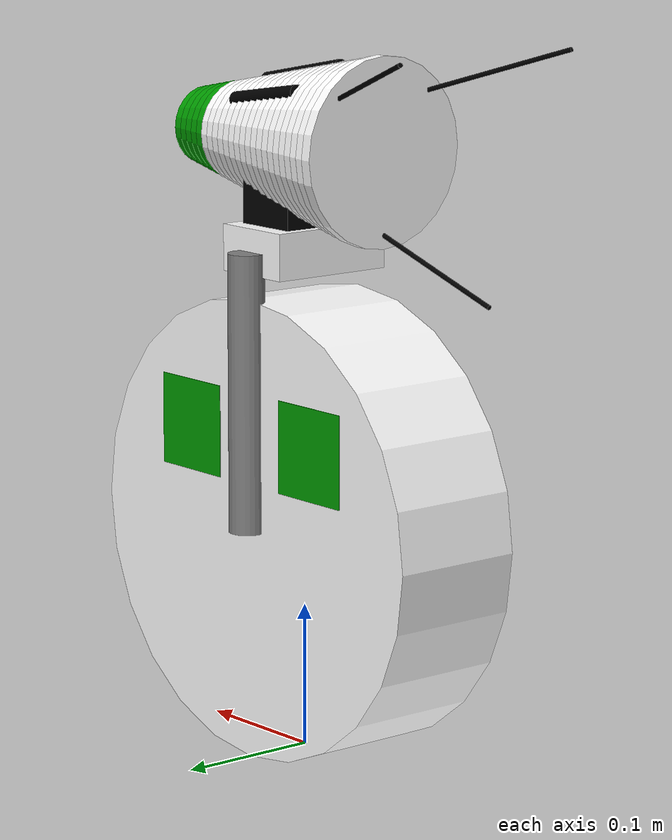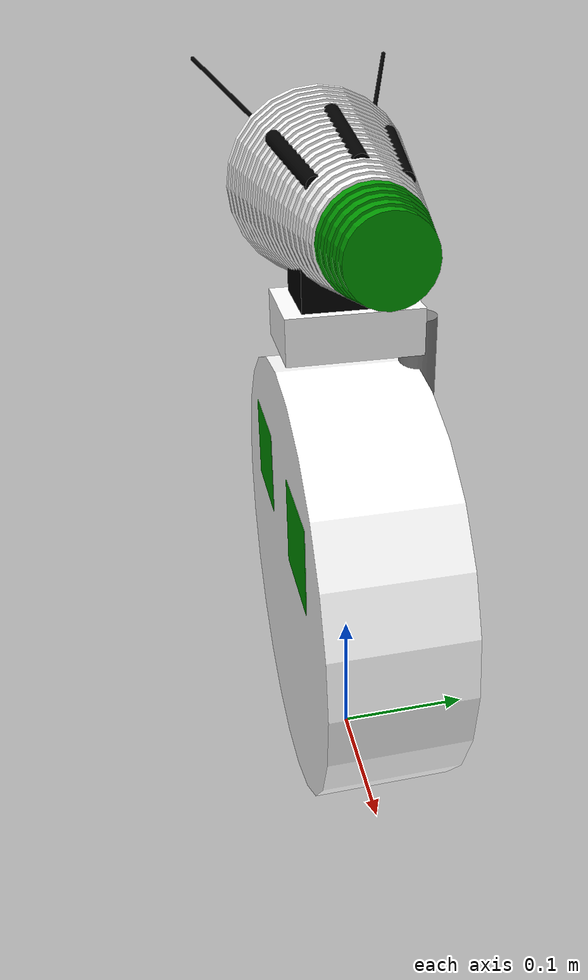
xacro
<?xml version="1.0"?>

<robot name="d0" xmlns:xacro="http://www.ros.org/wiki/xacro">

<xacro:include filename="robot.xacro" />
<xacro:arg name="name" default="d0"/>

<material name="blue">
    <color rgba="0 0 .8 1"/>
  </material>
  <material name="black">
    <color rgba="0 0 0 1"/>
  </material>
  <material name="white">
    <color rgba="1 1 1 1"/>
  </material>
  <material name="orange">
    <color rgba="1 .5 0 1"/>
  </material>
    <material name="grey">
    <color rgba=".5 .5 .5 1"/>
  </material>
      <material name="red">
    <color rgba="1 0 0 1"/>
  </material>
<material name="green">
    <color rgba="0 0.6 0 1"/>
  </material>

<!-- Body properties -->
<xacro:property name="robot_name" value="$(arg name)"/>
<xacro:property name="radius" value=".16"/>
<xacro:property name="torso" value="${1.2*radius}"/>
<xacro:property name="neck" value="${0.45*radius}"/>
<xacro:property name="width" value="${0.6*radius}"/>
<xacro:property name="dx" value="${0.05*radius}"/>
<xacro:property name="dr" value="${0.01*radius}"/>

<xacro:macro name="cone" params="color n x rad">
    <visual>
      <origin xyz="${x} 0 0" rpy="0 ${PI/2} 0"/>
      <geometry>
        <cylinder radius="${rad}" length="${dx}"/>
      </geometry>
      <material name="${color}"/>
    </visual>
    <xacro:if value="${n}">
        <xacro:cone n="${n-1}" color="${color}" x="${x+dx}" rad="${rad-dr}"/>
    </xacro:if>
</xacro:macro>

<xacro:robot name="$(arg name)" torso="${torso}" neck="${neck}" radius="${radius}"/>

<xacro:if value="${robot_name == 'd0'}">
    <xacro:property name="noze_color" value="green"/>
    <xacro:property name="wheel_color" value="white"/>
    <xacro:property name="torso_color" value="grey"/>
    <xacro:property name="neck_color" value="black"/>
</xacro:if>

<xacro:if value="${robot_name == 'd9'}">
    <xacro:property name="noze_color" value="red"/>
    <xacro:property name="wheel_color" value="black"/>
    <xacro:property name="torso_color" value="grey"/>
    <xacro:property name="neck_color" value="grey"/>
</xacro:if>

 <!-- wheel links -->
  <link name="$(arg name)/wheel">
    <visual>
      <origin rpy="${PI/2} 0 0"/>
      <geometry>
        <cylinder radius="${radius}" length="${width}"/>
      </geometry>
      <material name="${wheel_color}"/>
    </visual>
</link>
<link name="$(arg name)/wheel1">
    <visual>
    <origin xyz="${0.4*radius} 0 ${0.4*radius}" rpy="0 0 0"/>
      <geometry>
        <box size="${0.4*radius} ${1.01*width} ${0.4*radius}"/>
      </geometry>
      <material name="${noze_color}"/>
    </visual>
    <visual>
    <origin xyz="${-0.4*radius} 0 ${0.4*radius}" rpy="0 0 0"/>
      <geometry>
        <box size="${0.4*radius} ${1.01*width} ${0.4*radius}"/>
      </geometry>
      <material name="${noze_color}"/>
    </visual>
  </link>
<joint name="wheel1" type="fixed">
      <parent link="$(arg name)/wheel"/>
      <child link="$(arg name)/wheel1"/>
</joint>

<!-- torso links -->
  <link name="$(arg name)/torso1">
    <visual>
      <origin xyz="0 ${0.52*width} ${torso/2}"/>
      <geometry>
        <cylinder radius="${0.08*radius}" length="${torso}"/>
      </geometry>
      <material name="${torso_color}"/>
    </visual>
</link>
  <joint name="torso1" type="fixed">
      <parent link="$(arg name)/torso"/>
      <child link="$(arg name)/torso1"/>
</joint>

  <link name="$(arg name)/torso2">
    <visual>
      <origin xyz="0 0 ${torso}"/>
      <geometry>
        <box size="${0.38*radius} ${0.95*width} ${0.2*radius}"/>
      </geometry>
      <material name="${wheel_color}"/>
    </visual>
</link>
  <joint name="torso2" type="fixed">
      <parent link="$(arg name)/torso"/>
      <child link="$(arg name)/torso2"/>
</joint>

  <link name="$(arg name)/torso3">
    <visual>
      <origin xyz="0 0 ${torso+0.15*radius}"/>
      <geometry>
        <box size="${0.3*radius} ${0.7*width} ${0.3*radius}"/>
      </geometry>
      <material name="${neck_color}"/>
    </visual>
</link>
  <joint name="torso3" type="fixed">
      <parent link="$(arg name)/torso"/>
      <child link="$(arg name)/torso3"/>
</joint>

<!-- head links -->
  <link name="$(arg name)/head">
    <xacro:cone n="18" color="${wheel_color}" x="${-0.5*radius}" rad="${0.4*radius}"/>
    </link>
  <link name="$(arg name)/head2">
    <xacro:cone n="5" color="${noze_color}" x="${-0.5*radius+18*dx}" rad="${0.4*radius-18*dr}"/>
  </link>
<joint name="head2" type="fixed">
      <parent link="$(arg name)/head"/>
      <child link="$(arg name)/head2"/>
</joint>

<xacro:macro name="antenna" params="y z rpy">
    <visual>
      <origin xyz="${-0.7*radius} ${y} ${z}" rpy="${rpy}"/>
      <geometry>
        <cylinder radius="${0.01*radius}" length="${radius}"/>
      </geometry>
      <material name="black"/>
    </visual>
</xacro:macro>

  <link name="$(arg name)/antenna">
      <xacro:antenna y="${0}" z="${-0.4*radius}" rpy="0 ${PI/2-PI/10} 0"/>
      <xacro:antenna y="${0.3*radius}" z="${0.3*radius}" rpy="${PI/10} ${PI/2+PI/10} 0"/>
      <xacro:antenna y="${-0.3*radius}" z="${0.3*radius}" rpy="${-PI/10} ${PI/2+PI/10} 0"/>
  </link>
    <joint name="antenna" type="fixed">
      <parent link="$(arg name)/head"/>
      <child link="$(arg name)/antenna"/>
</joint>

<xacro:macro name="eye" params="y z rpy">
    <visual>
      <origin xyz="0 ${y} ${z}" rpy="${rpy}"/>
      <geometry>
        <cylinder radius="${0.035*radius}" length="${0.5*radius}"/>
      </geometry>
      <material name="${neck_color}"/>
    </visual>
</xacro:macro>

  <link name="$(arg name)/eyes">
      <xacro:eye y="${0.2*radius}" z="${0.38*radius-18*dr}" rpy="0 ${PI/2+PI/20} ${-PI/24}"/>
      <xacro:eye y="${-0.2*radius}" z="${0.38*radius-18*dr}" rpy="0 ${PI/2+PI/20} ${PI/24}"/>
      <xacro:eye y="${0}" z="${0.46*radius-18*dr}" rpy="0 ${PI/2+PI/16} 0"/>
  </link>

    <joint name="eyes" type="fixed">
      <parent link="$(arg name)/head"/>
      <child link="$(arg name)/eyes"/>
</joint>

</robot>

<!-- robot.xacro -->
<robot name="bb" xmlns:xacro="http://www.ros.org/wiki/xacro">

<xacro:property name="PI" value="3.1415926535897931"/>

<xacro:macro name="robot" params="name radius torso neck">

<!-- links without visual -->
<link name="${name}/base_link"/>
<link name="${name}/scan"/>
<link name="${name}/roll"/>
<link name="${name}/neck"/>
<link name="${name}/torso"/>

  <joint name="roll" type="revolute">
    <mimic joint="neck" multiplier="0.5"/>
      <axis xyz="-1 0 0"/>
      <limit lower="${-PI/6}" upper="${PI/6}" effort="10" velocity="2"/>
      <child link="${name}/roll"/>
      <parent link="${name}/base_link"/>
  </joint>

  <joint name="scan" type="fixed">
    <parent link="${name}/base_link"/>
    <child link="${name}/scan"/>
    <origin xyz="0 0 ${radius}"/>
  </joint>

  <joint name="wheel" type="continuous">
    <parent link="${name}/roll"/>
    <child link="${name}/wheel"/>
    <axis xyz="0 1 0"/>
    <origin xyz="0 0 ${radius}"/>
  </joint>

  <joint name="torso" type="revolute">
      <axis xyz="0 1 0"/>
      <limit lower="${-PI/4}" upper="${PI/4}" effort="10" velocity="2"/>
      <child link="${name}/torso"/>
      <parent link="${name}/roll"/>
    <origin xyz="0 0 ${radius}"/>
  </joint>

  <joint name="neck" type="revolute">
    <parent link="${name}/torso"/>
    <child link="${name}/neck"/>
    <origin xyz="0 0 ${torso}"/>
    <axis xyz="-1 0 0"/>
    <limit lower="${-PI/6}" upper="${PI/6}" effort="10" velocity="2"/>
  </joint>

  <joint name="head" type="fixed">
  <parent link="${name}/neck"/>
    <child link="${name}/head"/>
    <origin xyz="0 0 ${neck}"/>
</joint>
</xacro:macro>

</robot>
